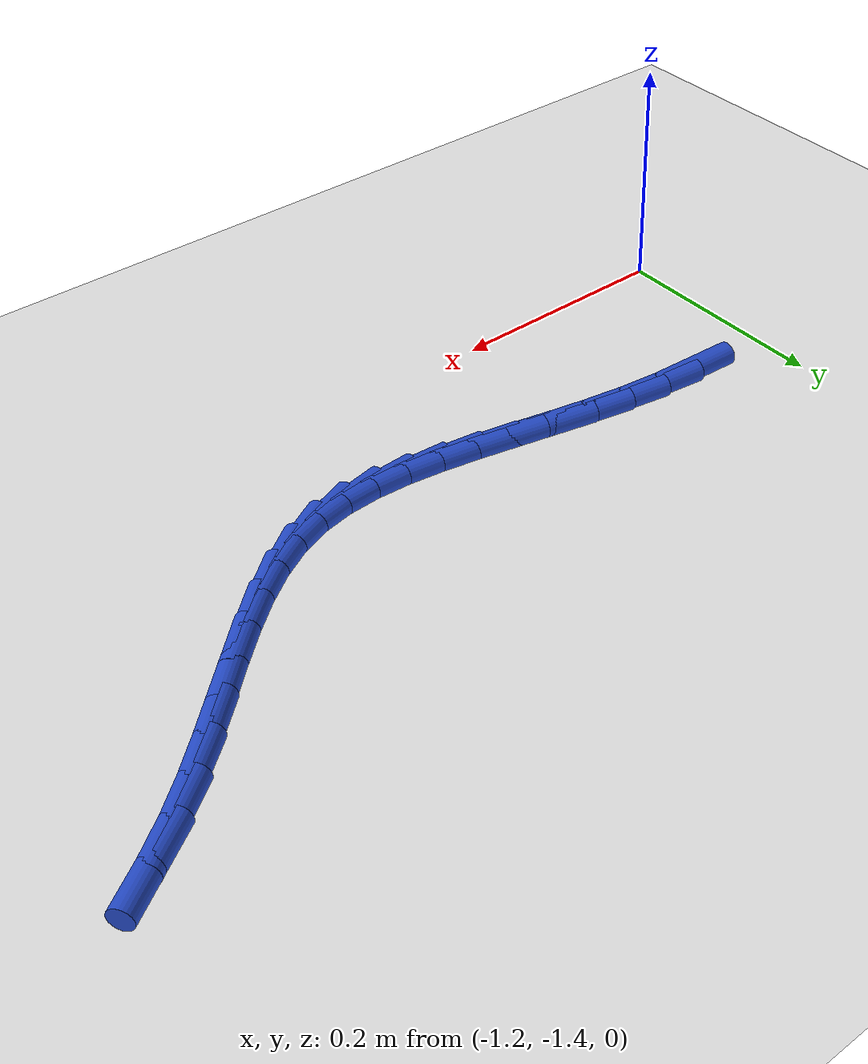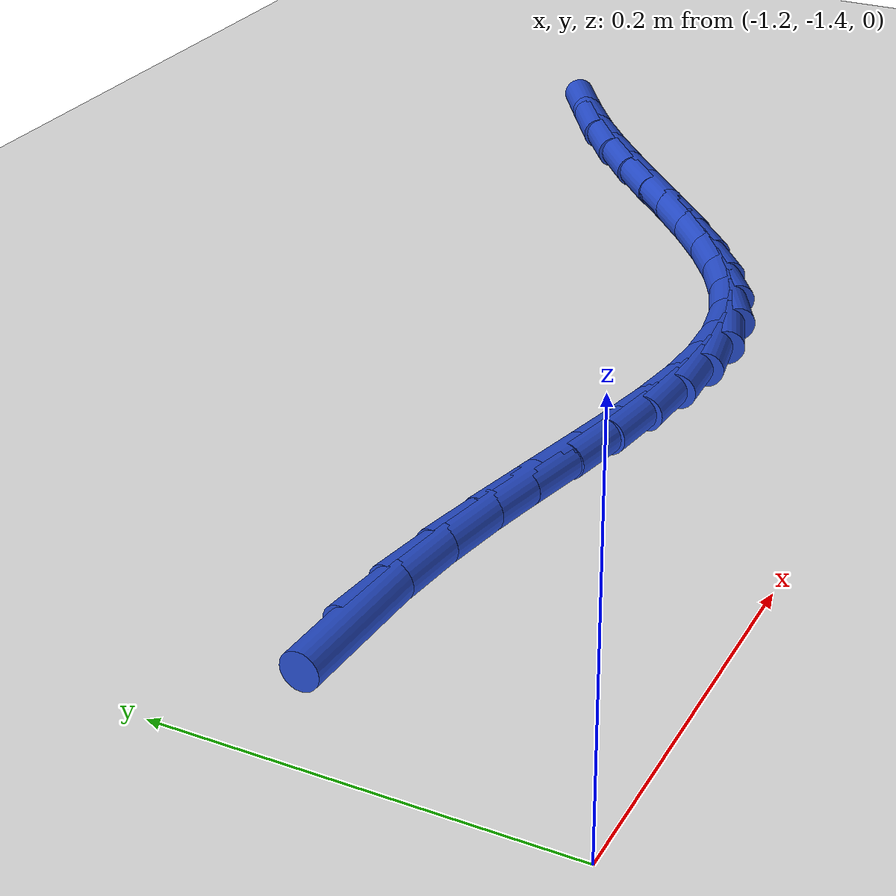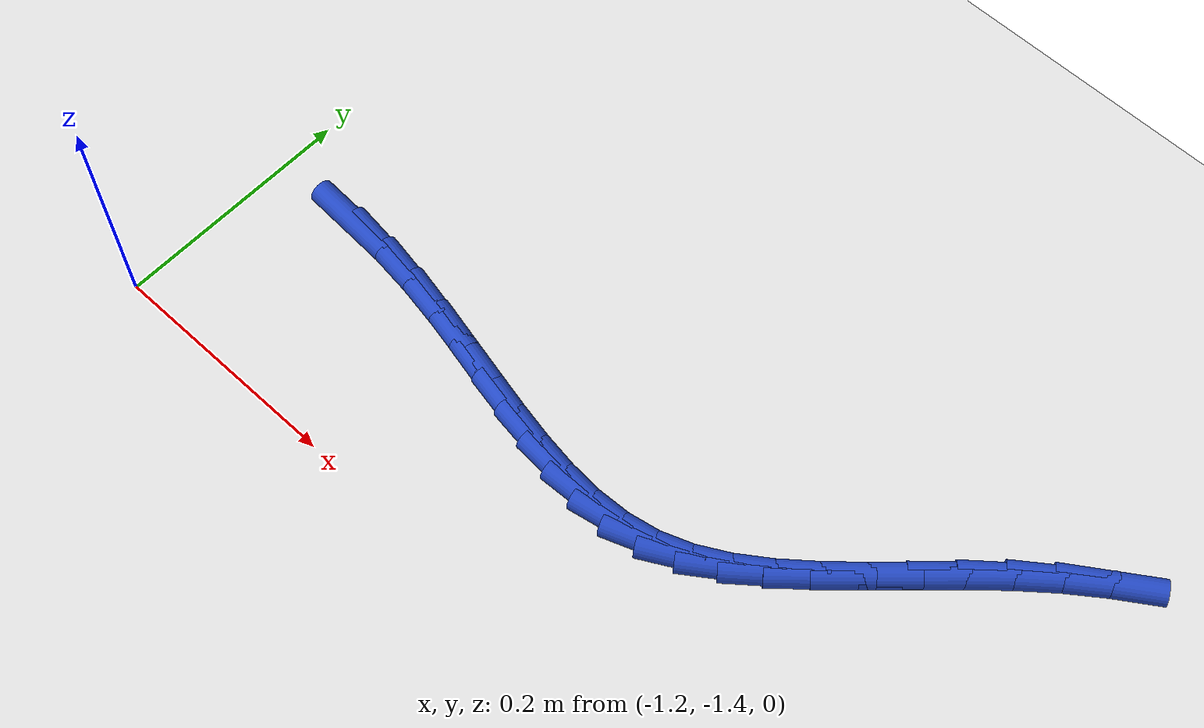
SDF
<sdf version="1.6">
 <world name="default">
  <model name="ground_plane">
   <static>1</static>
   <link name="link">
    <collision name="collision">
     <geometry><plane><normal>0 0 1</normal><size>100 100</size></plane></geometry>
     <surface><friction><ode><mu>100</mu><mu2>50</mu2></ode></friction></surface>
    </collision>
    <visual name="visual">
     <cast_shadows>0</cast_shadows>
     <geometry><plane><normal>0 0 1</normal><size>100 100</size></plane></geometry>
     <material>
      <script><uri>file://media/materials/scripts/gazebo.material</uri><name>Gazebo/WhiteGlow</name></script>
     </material>
    </visual>
   </link>
  </model>
  <model name="line">
   <link name="link_200">
    <pose>-1.1158591775332993 -1.248609230805589 0.01 0 1.57 -0.051198745385187275</pose>
    <collision name="collision">
     <geometry><cylinder><radius>0.01</radius><length>0.08</length></cylinder></geometry>
    </collision>
    <visual name="visual">
     <material>
      <script><name>Gazebo/Blue</name><uri>file://media/materials/scripts/gazebo.material</uri></script>
     </material>
     <geometry><cylinder><radius>0.01</radius><length>0.08</length></cylinder></geometry>
    </visual>
   </link>
   <link name="link_201">
    <pose>-1.079233155061764 -1.2504860774244646 0.01 0 1.57 -0.12142100821613165</pose>
    <collision name="collision">
     <geometry><cylinder><radius>0.01</radius><length>0.08</length></cylinder></geometry>
    </collision>
    <visual name="visual">
     <material>
      <script><name>Gazebo/Blue</name><uri>file://media/materials/scripts/gazebo.material</uri></script>
     </material>
     <geometry><cylinder><radius>0.01</radius><length>0.08</length></cylinder></geometry>
    </visual>
   </link>
   <link name="link_202">
    <pose>-1.0434390114851808 -1.2548537237108115 0.01 0 1.57 -0.174116087752114</pose>
    <collision name="collision">
     <geometry><cylinder><radius>0.01</radius><length>0.08</length></cylinder></geometry>
    </collision>
    <visual name="visual">
     <material>
      <script><name>Gazebo/Blue</name><uri>file://media/materials/scripts/gazebo.material</uri></script>
     </material>
     <geometry><cylinder><radius>0.01</radius><length>0.08</length></cylinder></geometry>
    </visual>
   </link>
   <link name="link_203">
    <pose>-1.008494558580833 -1.2610003556509948 0.01 0 1.57 -0.2086117766735213</pose>
    <collision name="collision">
     <geometry><cylinder><radius>0.01</radius><length>0.08</length></cylinder></geometry>
    </collision>
    <visual name="visual">
     <material>
      <script><name>Gazebo/Blue</name><uri>file://media/materials/scripts/gazebo.material</uri></script>
     </material>
     <geometry><cylinder><radius>0.01</radius><length>0.08</length></cylinder></geometry>
    </visual>
   </link>
   <link name="link_204">
    <pose>-0.9744176081260016 -1.2682141592313803 0.01 0 1.57 -0.22421009069777306</pose>
    <collision name="collision">
     <geometry><cylinder><radius>0.01</radius><length>0.08</length></cylinder></geometry>
    </collision>
    <visual name="visual">
     <material>
      <script><name>Gazebo/Blue</name><uri>file://media/materials/scripts/gazebo.material</uri></script>
     </material>
     <geometry><cylinder><radius>0.01</radius><length>0.08</length></cylinder></geometry>
    </visual>
   </link>
   <link name="link_205">
    <pose>-0.9412259718979707 -1.275783320438333 0.01 0 1.57 -0.21977484247066706</pose>
    <collision name="collision">
     <geometry><cylinder><radius>0.01</radius><length>0.08</length></cylinder></geometry>
    </collision>
    <visual name="visual">
     <material>
      <script><name>Gazebo/Blue</name><uri>file://media/materials/scripts/gazebo.material</uri></script>
     </material>
     <geometry><cylinder><radius>0.01</radius><length>0.08</length></cylinder></geometry>
    </visual>
   </link>
   <link name="link_206">
    <pose>-0.9089374616740222 -1.2829960252582187 0.01 0 1.57 -0.19343563913153508</pose>
    <collision name="collision">
     <geometry><cylinder><radius>0.01</radius><length>0.08</length></cylinder></geometry>
    </collision>
    <visual name="visual">
     <material>
      <script><name>Gazebo/Blue</name><uri>file://media/materials/scripts/gazebo.material</uri></script>
     </material>
     <geometry><cylinder><radius>0.01</radius><length>0.08</length></cylinder></geometry>
    </visual>
   </link>
   <link name="link_207">
    <pose>-0.8775698892314384 -1.289140459677403 0.01 0 1.57 -0.14245660428373955</pose>
    <collision name="collision">
     <geometry><cylinder><radius>0.01</radius><length>0.08</length></cylinder></geometry>
    </collision>
    <visual name="visual">
     <material>
      <script><name>Gazebo/Blue</name><uri>file://media/materials/scripts/gazebo.material</uri></script>
     </material>
     <geometry><cylinder><radius>0.01</radius><length>0.08</length></cylinder></geometry>
    </visual>
   </link>
   <link name="link_208">
    <pose>-0.8471410663475015 -1.2935048096822515 0.01 0 1.57 -0.06344739904386203</pose>
    <collision name="collision">
     <geometry><cylinder><radius>0.01</radius><length>0.08</length></cylinder></geometry>
    </collision>
    <visual name="visual">
     <material>
      <script><name>Gazebo/Blue</name><uri>file://media/materials/scripts/gazebo.material</uri></script>
     </material>
     <geometry><cylinder><radius>0.01</radius><length>0.08</length></cylinder></geometry>
    </visual>
   </link>
   <link name="link_209">
    <pose>-0.8176688047994942 -1.2953772612591297 0.01 0 1.57 0.04668043249134019</pose>
    <collision name="collision">
     <geometry><cylinder><radius>0.01</radius><length>0.08</length></cylinder></geometry>
    </collision>
    <visual name="visual">
     <material>
      <script><name>Gazebo/Blue</name><uri>file://media/materials/scripts/gazebo.material</uri></script>
     </material>
     <geometry><cylinder><radius>0.01</radius><length>0.08</length></cylinder></geometry>
    </visual>
   </link>
   <link name="link_210">
    <pose>-0.7891709163646988 -1.294046000394403 0.01 0 1.57 0.18848832403332982</pose>
    <collision name="collision">
     <geometry><cylinder><radius>0.01</radius><length>0.08</length></cylinder></geometry>
    </collision>
    <visual name="visual">
     <material>
      <script><name>Gazebo/Blue</name><uri>file://media/materials/scripts/gazebo.material</uri></script>
     </material>
     <geometry><cylinder><radius>0.01</radius><length>0.08</length></cylinder></geometry>
    </visual>
   </link>
   <link name="link_211">
    <pose>-0.7616652128203978 -1.288799213074437 0.01 0 1.57 0.3536116657791112</pose>
    <collision name="collision">
     <geometry><cylinder><radius>0.01</radius><length>0.08</length></cylinder></geometry>
    </collision>
    <visual name="visual">
     <material>
      <script><name>Gazebo/Blue</name><uri>file://media/materials/scripts/gazebo.material</uri></script>
     </material>
     <geometry><cylinder><radius>0.01</radius><length>0.08</length></cylinder></geometry>
    </visual>
   </link>
   <link name="link_212">
    <pose>-0.7351539404495481 -1.2790131913886766 0.01 0 1.57 0.5011755503635836</pose>
    <collision name="collision">
     <geometry><cylinder><radius>0.01</radius><length>0.08</length></cylinder></geometry>
    </collision>
    <visual name="visual">
     <material>
      <script><name>Gazebo/Blue</name><uri>file://media/materials/scripts/gazebo.material</uri></script>
     </material>
     <geometry><cylinder><radius>0.01</radius><length>0.08</length></cylinder></geometry>
    </visual>
   </link>
   <link name="link_213">
    <pose>-0.7094828894660894 -1.2649498231073637 0.01 0 1.57 0.6111078034048815</pose>
    <collision name="collision">
     <geometry><cylinder><radius>0.01</radius><length>0.08</length></cylinder></geometry>
    </collision>
    <visual name="visual">
     <material>
      <script><name>Gazebo/Blue</name><uri>file://media/materials/scripts/gazebo.material</uri></script>
     </material>
     <geometry><cylinder><radius>0.01</radius><length>0.08</length></cylinder></geometry>
    </visual>
   </link>
   <link name="link_214">
    <pose>-0.6844074416090054 -1.2473827393638086 0.01 0 1.57 0.6872044071667125</pose>
    <collision name="collision">
     <geometry><cylinder><radius>0.01</radius><length>0.08</length></cylinder></geometry>
    </collision>
    <visual name="visual">
     <material>
      <script><name>Gazebo/Blue</name><uri>file://media/materials/scripts/gazebo.material</uri></script>
     </material>
     <geometry><cylinder><radius>0.01</radius><length>0.08</length></cylinder></geometry>
    </visual>
   </link>
   <link name="link_215">
    <pose>-0.6596818813722368 -1.2270917820792724 0.01 0 1.57 0.7345120463810741</pose>
    <collision name="collision">
     <geometry><cylinder><radius>0.01</radius><length>0.08</length></cylinder></geometry>
    </collision>
    <visual name="visual">
     <material>
      <script><name>Gazebo/Blue</name><uri>file://media/materials/scripts/gazebo.material</uri></script>
     </material>
     <geometry><cylinder><radius>0.01</radius><length>0.08</length></cylinder></geometry>
    </visual>
   </link>
   <link name="link_216">
    <pose>-0.6350604932497255 -1.2048567931750183 0.01 0 1.57 0.7570898396424122</pose>
    <collision name="collision">
     <geometry><cylinder><radius>0.01</radius><length>0.08</length></cylinder></geometry>
    </collision>
    <visual name="visual">
     <material>
      <script><name>Gazebo/Blue</name><uri>file://media/materials/scripts/gazebo.material</uri></script>
     </material>
     <geometry><cylinder><radius>0.01</radius><length>0.08</length></cylinder></geometry>
    </visual>
   </link>
   <link name="link_217">
    <pose>-0.6102975617354132 -1.181457614572308 0.01 0 1.57 0.7574765391032039</pose>
    <collision name="collision">
     <geometry><cylinder><radius>0.01</radius><length>0.08</length></cylinder></geometry>
    </collision>
    <visual name="visual">
     <material>
      <script><name>Gazebo/Blue</name><uri>file://media/materials/scripts/gazebo.material</uri></script>
     </material>
     <geometry><cylinder><radius>0.01</radius><length>0.08</length></cylinder></geometry>
    </visual>
   </link>
   <link name="link_218">
    <pose>-0.5851473713232411 -1.1576740881924037 0.01 0 1.57 0.7367265603341288</pose>
    <collision name="collision">
     <geometry><cylinder><radius>0.01</radius><length>0.08</length></cylinder></geometry>
    </collision>
    <visual name="visual">
     <material>
      <script><name>Gazebo/Blue</name><uri>file://media/materials/scripts/gazebo.material</uri></script>
     </material>
     <geometry><cylinder><radius>0.01</radius><length>0.08</length></cylinder></geometry>
    </visual>
   </link>
   <link name="link_219">
    <pose>-0.5593642065071514 -1.1342860559565686 0.01 0 1.57 0.694616171781709</pose>
    <collision name="collision">
     <geometry><cylinder><radius>0.01</radius><length>0.08</length></cylinder></geometry>
    </collision>
    <visual name="visual">
     <material>
      <script><name>Gazebo/Blue</name><uri>file://media/materials/scripts/gazebo.material</uri></script>
     </material>
     <geometry><cylinder><radius>0.01</radius><length>0.08</length></cylinder></geometry>
    </visual>
   </link>
   <link name="link_220">
    <pose>-0.5327023519071148 -1.1120733595436416 0.01 0 1.57 0.6365559645011807</pose>
    <collision name="collision">
     <geometry><cylinder><radius>0.01</radius><length>0.08</length></cylinder></geometry>
    </collision>
    <visual name="visual">
     <material>
      <script><name>Gazebo/Blue</name><uri>file://media/materials/scripts/gazebo.material</uri></script>
     </material>
     <geometry><cylinder><radius>0.01</radius><length>0.08</length></cylinder></geometry>
    </visual>
   </link>
   <link name="link_221">
    <pose>-0.5050220750029617 -1.0916119806091944 0.01 0 1.57 0.5873158030247914</pose>
    <collision name="collision">
     <geometry><cylinder><radius>0.01</radius><length>0.08</length></cylinder></geometry>
    </collision>
    <visual name="visual">
     <material>
      <script><name>Gazebo/Blue</name><uri>file://media/materials/scripts/gazebo.material</uri></script>
     </material>
     <geometry><cylinder><radius>0.01</radius><length>0.08</length></cylinder></geometry>
    </visual>
   </link>
  </model>
 </world>
</sdf>
